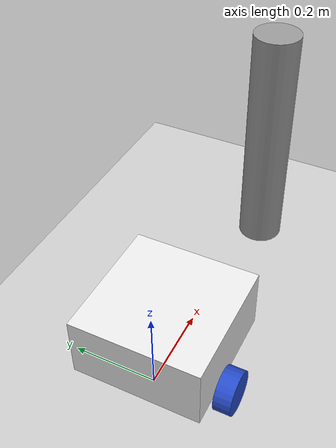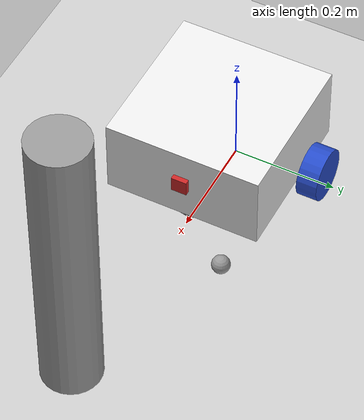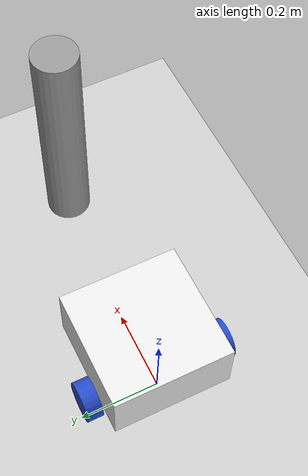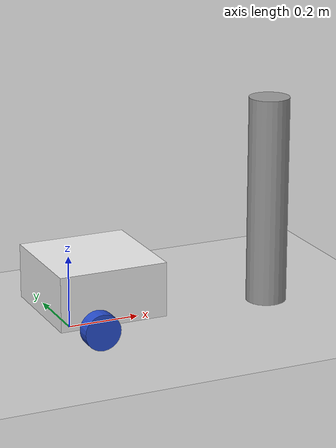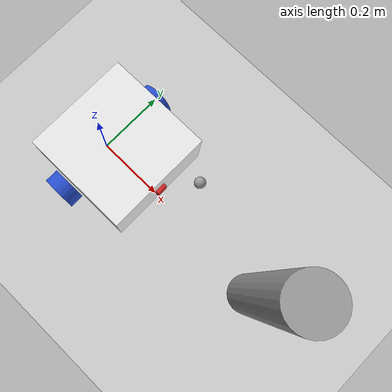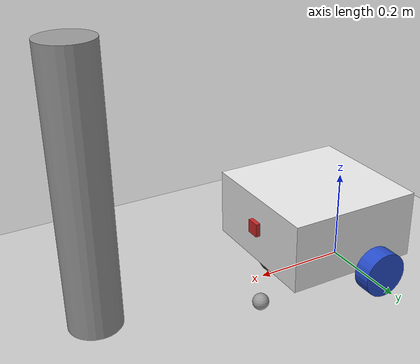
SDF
<sdf version="1.7">
 <world name="default">
  <model name="ground_plane">
   <static>1</static>
   <link name="link">
    <collision name="collision">
     <geometry><plane><normal>0 0 1</normal><size>100 100</size></plane></geometry>
     <surface>
      <contact><collide_bitmask>65535</collide_bitmask></contact>
      <friction><ode><mu>100</mu><mu2>50</mu2></ode></friction>
     </surface>
    </collision>
    <visual name="visual">
     <cast_shadows>0</cast_shadows>
     <geometry><plane><normal>0 0 1</normal><size>100 100</size></plane></geometry>
     <material>
      <script><uri>file://media/materials/scripts/gazebo.material</uri><name>Gazebo/Grey</name></script>
     </material>
    </visual>
   </link>
  </model>
  <gravity>0 0 -9.8</gravity>
  <magnetic_field>6e-06 2.3e-05 -4.2e-05</magnetic_field>
  <atmosphere type="adiabatic"/>
  <physics type="ode">
   <max_step_size>0.001</max_step_size>
   <real_time_factor>1</real_time_factor>
   <real_time_update_rate>1000</real_time_update_rate>
  </physics>
  <scene><ambient>0.4 0.4 0.4 1</ambient><background>0.7 0.7 0.7 1</background><shadows>1</shadows></scene>
  <audio><device>default</device></audio>
  <spherical_coordinates>
   <surface_model>EARTH_WGS84</surface_model>
   <latitude_deg>0</latitude_deg>
   <longitude_deg>0</longitude_deg>
   <elevation>0</elevation>
   <heading_deg>0</heading_deg>
  </spherical_coordinates>
  <light name="user_point_light_0" type="point">
   <pose>0.109768 0.11582 1 0 -0 0</pose>
   <diffuse>0.5 0.5 0.5 1</diffuse>
   <specular>0.1 0.1 0.1 1</specular>
   <attenuation>
    <range>20</range>
    <constant>0.5</constant>
    <linear>0.01</linear>
    <quadratic>0.001</quadratic>
   </attenuation>
   <cast_shadows>0</cast_shadows>
   <direction>0 0 -1</direction>
   <spot><inner_angle>0</inner_angle><outer_angle>0</outer_angle><falloff>0</falloff></spot>
  </light>
  <light name="user_point_light_1" type="point">
   <pose>4.5532 -0.196686 1 0 -0 0</pose>
   <diffuse>0.5 0.5 0.5 1</diffuse>
   <specular>0.1 0.1 0.1 1</specular>
   <attenuation>
    <range>20</range>
    <constant>0.5</constant>
    <linear>0.01</linear>
    <quadratic>0.001</quadratic>
   </attenuation>
   <cast_shadows>0</cast_shadows>
   <direction>0 0 -1</direction>
   <spot><inner_angle>0</inner_angle><outer_angle>0</outer_angle><falloff>0</falloff></spot>
  </light>
  <model name="my_bot">
   <link name="base_link">
    <inertial>
     <pose>0.065 0 0.0625 0 -0 0</pose>
     <mass>0.6</mass>
     <inertia>
      <ixx>0.00525625</ixx>
      <ixy>0</ixy>
      <ixz>0.0005625</ixz>
      <iyy>0.00593125</iyy>
      <iyz>0</iyz>
      <izz>0.008275</izz>
     </inertia>
    </inertial>
    <collision name="base_link_fixed_joint_lump__chassis_collision">
     <pose>0.05 0 0.075 0 -0 0</pose>
     <geometry><box><size>0.3 0.3 0.15</size></box></geometry>
    </collision>
    <collision name="base_link_fixed_joint_lump__caster_wheel_collision_1">
     <pose>0.14 0 0 0 -0 0</pose>
     <geometry><sphere><radius>0.05</radius></sphere></geometry>
     <surface><friction><ode><mu>0.001</mu><mu2>0.001</mu2></ode></friction></surface>
    </collision>
    <visual name="base_link_fixed_joint_lump__chassis_visual">
     <pose>0.05 0 0.075 0 -0 0</pose>
     <geometry><box><size>0.3 0.3 0.15</size></box></geometry>
     <material>
      <script><name>Gazebo/White</name><uri>file://media/materials/scripts/gazebo.material</uri></script>
     </material>
    </visual>
    <visual name="base_link_fixed_joint_lump__camera_link_visual_1">
     <pose>0.205 0 0.08 0 -0 0</pose>
     <geometry><box><size>0.01 0.03 0.03</size></box></geometry>
     <material>
      <script><name>Gazebo/Red</name><uri>file://media/materials/scripts/gazebo.material</uri></script>
     </material>
    </visual>
    <visual name="base_link_fixed_joint_lump__caster_wheel_visual_2">
     <pose>0.14 0 0 0 -0 0</pose>
     <geometry><sphere><radius>0.05</radius></sphere></geometry>
     <material>
      <script><name>Gazebo/Black</name><uri>file://media/materials/scripts/gazebo.material</uri></script>
     </material>
    </visual>
    <sensor name="camera" type="depth">
     <visualize>1</visualize>
     <update_rate>10</update_rate>
     <camera>
      <horizontal_fov>1.50098</horizontal_fov>
      <image><format>B8G8R8</format><width>640</width><height>480</height></image>
      <clip><near>0.1</near><far>3</far></clip>
     </camera>
     <plugin name="camera_controller" filename="libgazebo_ros_camera.so">
      <frame_name>camera_link_optical</frame_name>
      <min_depth>0.1</min_depth>
      <max_depth>3.0</max_depth>
     </plugin>
     <pose>0.205 0 0.08 0 -0 0</pose>
    </sensor>
   </link>
   <joint name="left_wheel_joint" type="revolute">
    <pose relative_to="base_link">0 0.175 0 -1.5708 0 0</pose>
    <parent>base_link</parent>
    <child>left_wheel</child>
    <axis>
     <xyz>0 0 1</xyz>
     <limit><lower>-1e+16</lower><upper>1e+16</upper></limit>
     <dynamics><spring_reference>0</spring_reference><spring_stiffness>0</spring_stiffness></dynamics>
    </axis>
   </joint>
   <link name="left_wheel">
    <pose relative_to="left_wheel_joint">0 0 0 0 -0 0</pose>
    <inertial>
     <mass>0.1</mass>
     <inertia>
      <ixx>7.58333e-05</ixx>
      <ixy>0</ixy>
      <ixz>0</ixz>
      <iyy>7.58333e-05</iyy>
      <iyz>0</iyz>
      <izz>0.000125</izz>
     </inertia>
    </inertial>
    <collision name="left_wheel_collision">
     <geometry><cylinder><length>0.04</length><radius>0.05</radius></cylinder></geometry>
    </collision>
    <visual name="left_wheel_visual">
     <geometry><cylinder><length>0.04</length><radius>0.05</radius></cylinder></geometry>
     <material>
      <script><name>Gazebo/Blue</name><uri>file://media/materials/scripts/gazebo.material</uri></script>
     </material>
    </visual>
   </link>
   <joint name="right_wheel_joint" type="revolute">
    <pose relative_to="base_link">0 -0.175 0 1.5708 -0 0</pose>
    <parent>base_link</parent>
    <child>right_wheel</child>
    <axis>
     <xyz>0 0 -1</xyz>
     <limit><lower>-1e+16</lower><upper>1e+16</upper></limit>
     <dynamics><spring_reference>0</spring_reference><spring_stiffness>0</spring_stiffness></dynamics>
    </axis>
   </joint>
   <link name="right_wheel">
    <pose relative_to="right_wheel_joint">0 0 0 0 -0 0</pose>
    <inertial>
     <mass>0.1</mass>
     <inertia>
      <ixx>7.58333e-05</ixx>
      <ixy>0</ixy>
      <ixz>0</ixz>
      <iyy>7.58333e-05</iyy>
      <iyz>0</iyz>
      <izz>0.000125</izz>
     </inertia>
    </inertial>
    <collision name="right_wheel_collision">
     <geometry><cylinder><length>0.04</length><radius>0.05</radius></cylinder></geometry>
    </collision>
    <visual name="right_wheel_visual">
     <geometry><cylinder><length>0.04</length><radius>0.05</radius></cylinder></geometry>
     <material>
      <script><name>Gazebo/Blue</name><uri>file://media/materials/scripts/gazebo.material</uri></script>
     </material>
    </visual>
   </link>
   <static>0</static>
   <plugin name="diff_drive" filename="libgazebo_ros_diff_drive.so">
    <left_joint>left_wheel_joint</left_joint>
    <right_joint>right_wheel_joint</right_joint>
    <wheel_seperation>0.35</wheel_seperation>
    <wheel_diameter>0.1</wheel_diameter>
    <max_wheel_torque>200</max_wheel_torque>
    <max_wheel_acceleration>10.0</max_wheel_acceleration>
    <odometry_frame>odom</odometry_frame>
    <robot_base_frame>base_link</robot_base_frame>
    <publish_odom>1</publish_odom>
    <publish_odom_tf>1</publish_odom_tf>
    <publish_wheel_tf>1</publish_wheel_tf>
   </plugin>
   <pose>0.018593 5.9e-05 0.05 -0 1e-06 0.000319</pose>
  </model>
  <model name="unit_sphere">
   <link name="link">
    <inertial>
     <mass>9.106e-05</mass>
     <inertia><ixx>2e-08</ixx><ixy>0</ixy><ixz>0</ixz><iyy>2e-08</iyy><iyz>0</iyz><izz>2e-08</izz></inertia>
    </inertial>
    <visual name="visual">
     <geometry><sphere><radius>0.0175</radius></sphere></geometry>
     <material>
      <script><name>Gazebo/Grey</name><uri>file://media/materials/scripts/gazebo.material</uri></script>
      <shader type="pixel"><normal_map>__default__</normal_map></shader>
      <ambient>0.3 0.3 0.3 1</ambient>
      <diffuse>0.7 0.7 0.7 1</diffuse>
      <specular>0.01 0.01 0.01 1</specular>
      <emissive>0 0 0 1</emissive>
     </material>
    </visual>
    <collision name="collision">
     <geometry><sphere><radius>0.022494</radius></sphere></geometry>
     <surface>
      <friction>
       <ode><mu>1</mu><mu2>1</mu2><fdir1>0 0 0</fdir1><slip1>0</slip1><slip2>0</slip2></ode>
       <torsional>
        <coefficient>1</coefficient>
        <patch_radius>0</patch_radius>
        <surface_radius>0</surface_radius>
        <use_patch_radius>1</use_patch_radius>
        <ode><slip>0</slip></ode>
       </torsional>
      </friction>
      <bounce><restitution_coefficient>0</restitution_coefficient><threshold>1e+06</threshold></bounce>
      <contact>
       <collide_without_contact>0</collide_without_contact>
       <collide_without_contact_bitmask>1</collide_without_contact_bitmask>
       <collide_bitmask>1</collide_bitmask>
       <ode>
        <soft_cfm>0</soft_cfm>
        <soft_erp>0.2</soft_erp>
        <kp>1e+13</kp>
        <kd>1</kd>
        <max_vel>0.01</max_vel>
        <min_depth>0</min_depth>
       </ode>
       <bullet>
        <split_impulse>1</split_impulse>
        <split_impulse_penetration_threshold>-0.01</split_impulse_penetration_threshold>
        <soft_cfm>0</soft_cfm>
        <soft_erp>0.2</soft_erp>
        <kp>1e+13</kp>
        <kd>1</kd>
       </bullet>
      </contact>
     </surface>
    </collision>
   </link>
   <static>0</static>
   <pose>0.272881 0.107195 0.022494 0 -0 0</pose>
  </model>
  <model name="unit_cylinder">
   <pose>0.581399 -0.024205 0.29073 -0 -0 -0.074695</pose>
   <link name="link">
    <inertial>
     <mass>1</mass>
     <inertia><ixx>0.145833</ixx><ixy>0</ixy><ixz>0</ixz><iyy>0.145833</iyy><iyz>0</iyz><izz>0.125</izz></inertia>
    </inertial>
    <collision name="collision">
     <geometry><cylinder><radius>0.0563745</radius><length>0.581478</length></cylinder></geometry>
    </collision>
    <visual name="visual">
     <geometry><cylinder><radius>0.0563745</radius><length>0.581478</length></cylinder></geometry>
     <material>
      <script><name>Gazebo/Grey</name><uri>file://media/materials/scripts/gazebo.material</uri></script>
     </material>
    </visual>
   </link>
  </model>
 </world>
</sdf>
